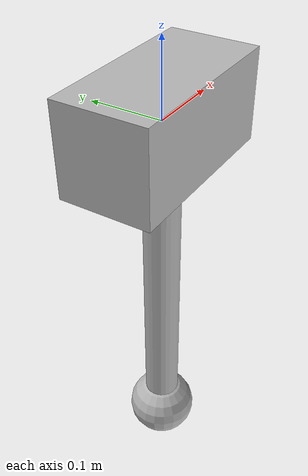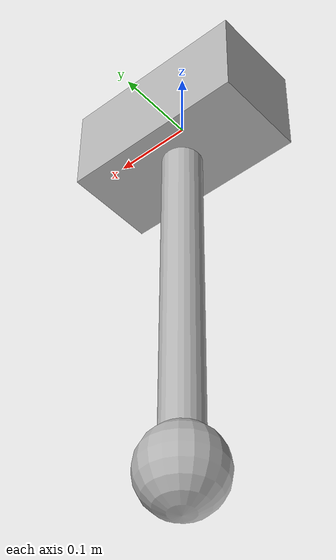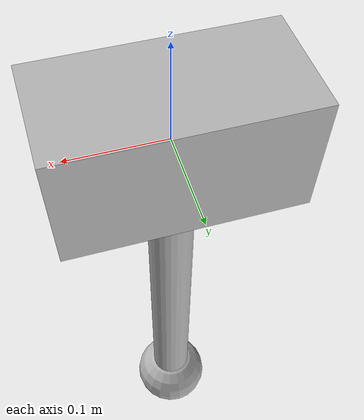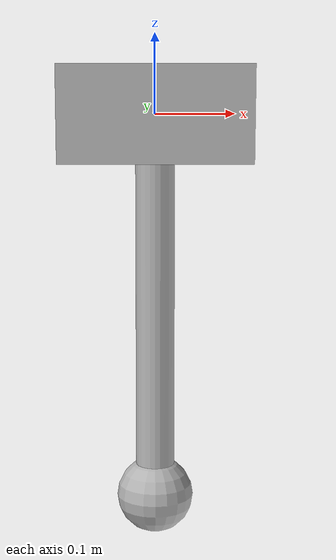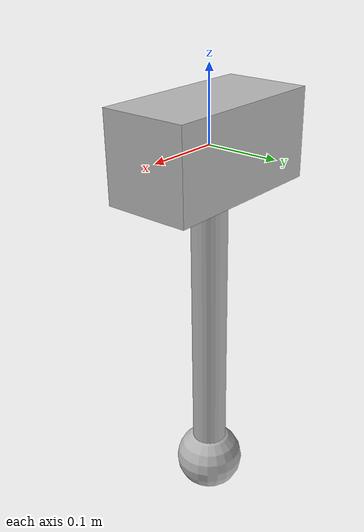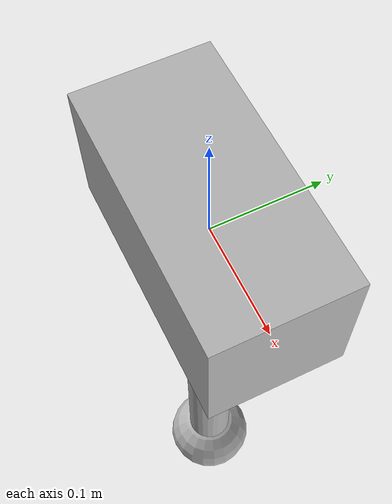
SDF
<sdf version='1.6'>
    <model name='CartPole'>
        <!-- This sdf file produces a model with the default parameters as
           documented in cart_pole_params.named_vector.
           They MUST be kept in sync. -->
        <link name='Cart'>
            <pose>0 0 0 0 0 0</pose>
            <inertial>
                <mass>10.0</mass>
                <inertia>
                    <ixx>1.0e-20</ixx>
                    <iyy>1.0e-20</iyy>
                    <izz>1.0e-20</izz>
                    <ixy>0</ixy>
                    <ixz>0</ixz>
                    <iyz>0</iyz>
                </inertia>
            </inertial>

            <visual name='cart_visual'>
                <pose>0 0 0 0 0 0</pose>
                <geometry>
                    <box>
                        <size>0.24 0.12 0.12</size>
                    </box>
                </geometry>
            </visual>
        </link>

        <link name='Pole'>
            <!-- The pole is modeled as a point mass at the end of a pole. -->
            <!-- The length of the pole is 0.5 meters. -->
            <pose>0 0 -0.5 0 0 0</pose>
            <inertial>
                <mass>1.0</mass>
                <!-- A point mass has zero rotational inertia.
               We must specify small values since otherwise sdformat throws an
               exception. -->
                <inertia>
                    <ixx>1.0e-20</ixx>
                    <iyy>1.0e-20</iyy>
                    <izz>1.0e-20</izz>
                    <ixy>0</ixy>
                    <ixz>0</ixz>
                    <iyz>0</iyz>
                </inertia>
            </inertial>

            <visual name='pole_point_mass'>
                <pose>0 0 0 0 0 0</pose>
                <geometry>
                    <sphere>
                        <radius>0.05</radius>
                    </sphere>
                </geometry>
            </visual>
            <visual name='pole_rod'>
                <pose>0 0 0.25 0 0 0</pose>
                <geometry>
                    <cylinder>
                        <radius>0.025</radius>
                        <length>0.5</length>
                    </cylinder>
                </geometry>
            </visual>
        </link>

        <joint name='CartSlider' type='prismatic'>
            <parent>world</parent>
            <child>Cart</child>
            <axis>
                <xyz>1.0 0.0 0.0</xyz>
                <limit>
                    <!-- The pole pin joint is not actuated. -->
                    <effort>1.0</effort>
                </limit>
            </axis>
        </joint>

        <joint name='PolePin' type='revolute'>
            <!-- Pose of the joint frame in the pole's frame (located at the point
             mass) -->
            <pose>0 0 0.5 0 0 0</pose>
            <parent>Cart</parent>
            <child>Pole</child>
            <axis>
                <xyz>0.0 -1.0 0.0</xyz>
                <limit>
                    <!-- The pole pin joint is not actuated. -->
                    <effort>1.0</effort>
                </limit>
            </axis>
        </joint>
    </model>
</sdf>
